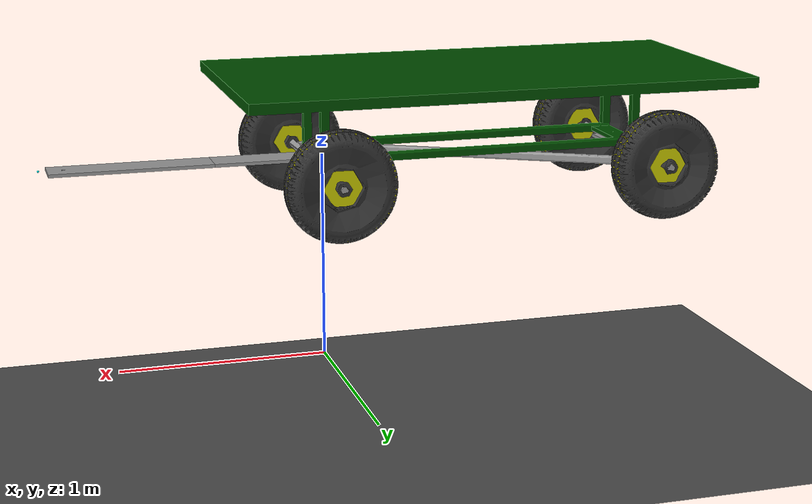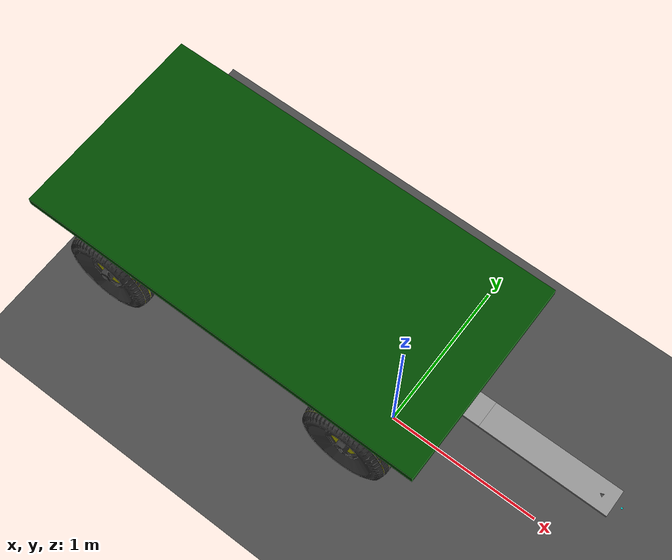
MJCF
<mujoco model="scene">

    <include file="QUAD_STEER.xml" />

    <visual>
        <headlight diffuse="0.6 0.6 0.6" ambient="0.3 0.3 0.3" specular="0 0 0" />
        <rgba haze="0.15 0.25 0.35 1" />
        <global offwidth="2560" offheight="1440" elevation="-5" azimuth="-120"/>
    </visual>

    <asset>
        <texture type="skybox" builtin="gradient" rgb1="0.3 0.5 0.7" rgb2="0 0 0" width="512"
            height="3072" />
    </asset>

    <asset>
        <!-- Base concrete texture with noise -->
        <texture name="concrete_base"
                type="2d"
                builtin="flat"
                height="1024"
                width="1024"
                rgb1="0.62 0.62 0.67"
                rgb2="0.78 0.78 0.83"
                mark="random"
                markrgb="0.25 0.25 0.3"/>

        <!-- Main cement floor material -->
        <material name="cement_floor"
                texture="concrete_base"
                specular="0.01"
                shininess="0.00"
                reflectance="0.00"/>
    </asset>

    <worldbody>

        <light pos="0 0 3.5" dir="0 0 -1" directional="true" />

    </worldbody>

</mujoco>

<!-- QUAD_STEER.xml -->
<mujoco model="quad_steer_cart">
    <compiler angle="radian" meshdir="assets" autolimits="true"/>

    <option noslip_iterations="10" noslip_tolerance="1e-6"/>

    <option>
        <flag gravity="enable"/>
    </option>

    <!-- Enhanced no-slip solver -->
    <option timestep="0.005"
            iterations="20"
            tolerance="1e-12"
            solver="Newton"
            jacobian="dense"
            noslip_iterations="10"
            noslip_tolerance="1e-6"/>

    <default>
        <default class="quad_steer_cart">
            <joint frictionloss="0.1" armature="0.005"/>
            <position kp="50" dampratio="1"/>

            <default class="body">
                <geom type="mesh" contype="1" conaffinity="1" group="1"/>
            </default>

            <default class="shaft">
                <geom type="mesh" contype="0" conaffinity="0" group="2"/>
            </default>

            <default class="tires-visual">
                <geom type="mesh" contype="0" conaffinity="0" group="2"/>
            </default>
            <default class="tires-collision">
                <geom type="mesh" contype="2" conaffinity="2" group="2"/>
            </default>

        </default>
    </default>

    <asset>
        <!-- Vehicle Materials  -->
        <mesh name="cart_body_mesh" file="Frame.stl"/>
        <mesh name="front_axle_mesh" file="Front-Axle.stl"/>
        <mesh name="rear_axle_mesh" file="Rear-Axle.stl"/>
        <mesh name="wheel_mesh" file="Wheel.stl"/>
        <mesh name="hook_mesh" file="HOOK.stl"/>
        <mesh name="crossbar_mesh" file="CrossBar.stl"/>

        <material name="vehicle_material" rgba="0.4 0.0 0.0 1"/>
        <material name="cart_material" rgba="0.0 0.3 0.0 1"/>
        <material name="shaft_material" rgba="0.6 0.6 0.6 1"/>
        <material name="wheel_material" rgba="0.2 0.2 0.2 1"/>
        <material name="wheel_collision_material" rgba="0.8 0.8 0.0 1"/>

        <!-- Ground Materials  -->
        <texture type="2d" name="groundplane"
            builtin="checker" mark="edge" rgb1="0.2 0.2 0.2" rgb2="0.4 0.4 0.4"
            markrgb="0.8 0.8 0.8" width="300" height="300" />
        <material name="groundplane" texture="groundplane" texuniform="true" texrepeat="5 5"
            reflectance="0.001"/>
    </asset>

    <worldbody>

        <!-- Ground -->
        <geom name="ground" size="0 0 0.05" pos="0 0 -0.3" type="plane" material="groundplane" contype="1" conaffinity="3" group="0"/>

        <!-- Quad-Steer-Cart Vehicle -->
        <body name="quad_steer_cart_vehicle" pos="0 0 1" quat="1 0 0 0" childclass="quad_steer_cart">
            <freejoint name="vehicle_freejoint"/>

            <!-- Quad-Steer-Cart Body -->
            <body name="quad_steer_cart_body" pos="0 0 0" quat="1 0 0 0" childclass="quad_steer_cart">
                <inertial pos="0 0 0" mass="10" diaginertia="10 10 10"/>
                <geom class="body"  type="mesh" mesh="cart_body_mesh" material="cart_material"/>

                <!-- Front Axle-->
                <body name="quad_steer_cart_front_axle" pos="0.0 0.0 0.0" quat="1.0 0.0 0.0 0.0">
                    <!-- Joint from mt340_body to mt340_front_axle -->
                    <joint axis="0 0 1" name="Revolute-Front-Axle" type="hinge"
                        ref="0.0"
                        range="-0.5235 0.5235"
                        stiffness="0.10" damping="0.10" frictionloss="0.10"
                        armature="0.0"
                        />
                    <inertial pos="0 0 0" mass="5.0" diaginertia="5 5 5"/>
                    <geom class="shaft"  type="mesh" mesh="front_axle_mesh" material="shaft_material"/>

                    <!-- Front right wheel -->
                    <body name="quad_steer_cart_wheel_front_right" pos="0.040 -0.600 -0.036" quat="0.7071067 0.7071067 0.0 0.0">
                        <joint axis="0 0 1" name="Revolute-Front-Right" type="hinge"
                            ref="0.0"
                            damping="0.1" frictionloss="0.1"/>
                        <inertial pos="0 0 0" mass="5.0" diaginertia="5 5 5"/>
                        <geom class="tires-visual"  type="mesh" mesh="wheel_mesh" material="wheel_material"/>
                        <geom class="tires-collision" type="cylinder" pos="0 0 -0.075400" size="0.254 0.0364" material="wheel_collision_material" name="wheel_fr_collision"/>
                    </body>

                    <!-- Front left wheel -->
                    <body name="quad_steer_cart_wheel_front_left" pos="0.040  0.600 -0.036" quat="0.7071067 -0.7071067 0.0 0.0">
                        <joint axis="0 0 1" name="Revolute-Front-Left" type="hinge"
                            ref="0.0"
                            damping="0.1" frictionloss="0.1"/>
                        <inertial pos="0 0 0" mass="5.0" diaginertia="5 5 5"/>
                        <geom class="tires-visual"  type="mesh" mesh="wheel_mesh" material="wheel_material"/>
                        <geom class="tires-collision" type="cylinder" pos="0 0 -0.075400" size="0.254 0.0364" material="wheel_collision_material" name="wheel_fl_collision"/>
                    </body>

                    <!-- Cross bar -->
                    <body name="quad_steer_cart_crossbar" pos="-0.024000 -0.410000 -0.028000" axisangle="0 0 1 -0.507">
                        <joint axis="0 0 1" name="Revolute-Crossbar" type="hinge"
                            ref="0.0"
                            damping="0.1" frictionloss="0.1"/>
                        <inertial pos="0 0 0" mass="1.0" diaginertia="1 1 1"/>
                        <geom class="shaft"  type="mesh" pos="-0.833772 0 0.004000" mesh="crossbar_mesh" material="shaft_material"/>

                        <site name="cross_bar_attachment_point"
                            pos="-1.667544 0 -0.004"/>
                        <geom class="body" type="sphere" size="0.01" rgba="1 0 0 1"
                            pos="-1.667544 0 -0.004"/>

                    </body>

                    <!-- Hook-->
                    <body name="quad_steer_cart_hook" pos="0.530  0.0  0.0" quat="1 0 0 0">
                        <joint axis="0 1 0" name="Revolute-Hook" type="hinge"
                            ref="0.0"
                            damping="0.1" frictionloss="0.1"/>
                        <inertial pos="0 0 0" mass="1.0" diaginertia="1 1 1"/>
                        <geom class="body"  type="mesh" mesh="hook_mesh"
                            pos="0 0 0" quat="0.5 0.5 -0.5 0.5" material="shaft_material"/>

                        <site name="hitch_point" rgba="0 1 1 1"
                            pos="0.8 0 0" />

                    </body>

                </body>

                <!-- Rear Axle-->
                <body name="quad_steer_cart_rear_axle" pos="-1.50 0.0 0.0" quat="0.0 0.0 0.0 1.0">
                    <!-- Joint from mt340_body to mt340_front_axle -->
                    <joint axis="0 0 1" name="Revolute-Rear-Axle" type="hinge"
                        ref="0.0"
                        range="-0.5235 0.5235"
                        stiffness="0.10" damping="0.10" frictionloss="0.10"
                        armature="0.0"
                        />
                    <inertial pos="0 0 0" mass="5.0" diaginertia="5 5 5"/>
                    <geom class="shaft"  type="mesh" mesh="rear_axle_mesh" material="shaft_material"/>

                    <!-- Rear right wheel -->
                    <body name="quad_steer_cart_wheel_rear_right" pos="0.040  0.600 -0.036" quat="0.7071067 -0.7071067 0.0 0.0">
                        <joint axis="0 0 1" name="Revolute-Rear-Right" type="hinge"
                            ref="0.0"
                            damping="0.1" frictionloss="0.1"/>
                        <inertial pos="0 0 0" mass="5.0" diaginertia="5 5 5"/>
                        <geom class="tires-visual"  type="mesh" mesh="wheel_mesh" material="wheel_material"/>
                        <geom class="tires-collision" type="cylinder" pos="0 0 -0.075400" size="0.254 0.0364" material="wheel_collision_material" name="wheel_rr_collision"/>
                    </body>

                    <!-- Rear left wheel -->
                    <body name="quad_steer_cart_wheel_rear_left" pos="0.040 -0.600 -0.036" quat="0.7071067  0.7071067 0.0 0.0">
                        <joint axis="0 0 1" name="Revolute-Rear-Left" type="hinge"
                            ref="0.0"
                            damping="0.1" frictionloss="0.1"/>
                        <inertial pos="0 0 0" mass="5.0" diaginertia="5 5 5"/>
                        <geom class="tires-visual"  type="mesh" mesh="wheel_mesh" material="wheel_material"/>
                        <geom class="tires-collision" type="cylinder" pos="0 0 -0.075400" size="0.254 0.0364" material="wheel_collision_material" name="wheel_rl_collision"/>
                    </body>

                    <!-- rear axle to cross bar attachment point -->
                    <site name="rear_axle_attachment_point"
                        pos="-0.024000 -0.410000 -0.028000"/>
                    <geom class="body" type="sphere" size="0.01" rgba="1 1 0 1"
                        pos="-0.024000 -0.410000 -0.028000"/>

                </body>

            </body>
        </body>

    </worldbody>

    <contact>
        <!-- Wheel-ground contacts with damping -->
        <pair geom1="wheel_fl_collision" geom2="ground"
            friction="0.8 0.4 0.015"
            solref="0.1 0.5"
            solimp="0.8 0.9 0.01"
            margin="0.001"/>
        <pair geom1="wheel_fr_collision" geom2="ground"
            friction="0.8 0.4 0.015"
            solref="0.1 0.5"
            solimp="0.8 0.9 0.01"
            margin="0.001"/>
        <pair geom1="wheel_rl_collision" geom2="ground"
            friction="0.8 0.4 0.015"
            solref="0.1 0.5"
            solimp="0.8 0.9 0.01"
            margin="0.001"/>
        <pair geom1="wheel_rr_collision" geom2="ground"
            friction="0.8 0.4 0.015"
            solref="0.1 0.5"
            solimp="0.8 0.9 0.01"
            margin="0.001"/>
    </contact>

    <equality>

        <connect name="cross_bar_to_rear_axle_connection"
            site1="cross_bar_attachment_point"
            site2="rear_axle_attachment_point"
            solref="0.001 1"
            solimp="0.5 0.5 0.5"/>

    </equality>

    <actuator>
    </actuator>

</mujoco>
